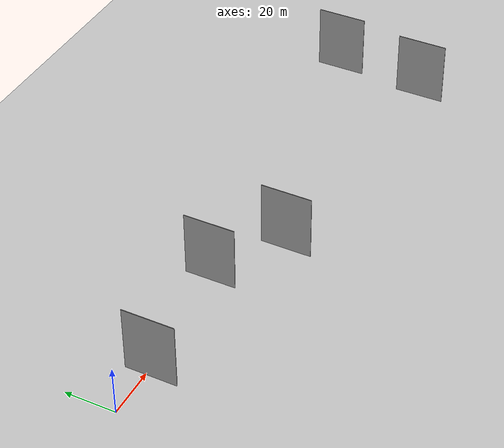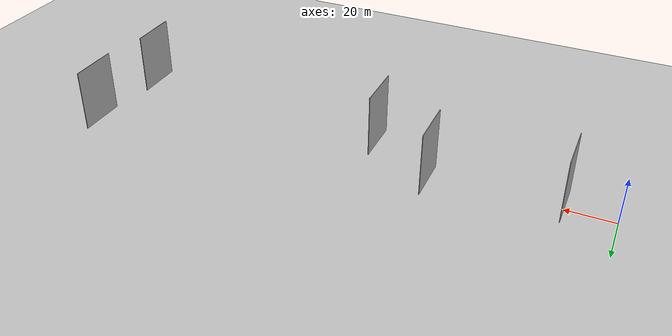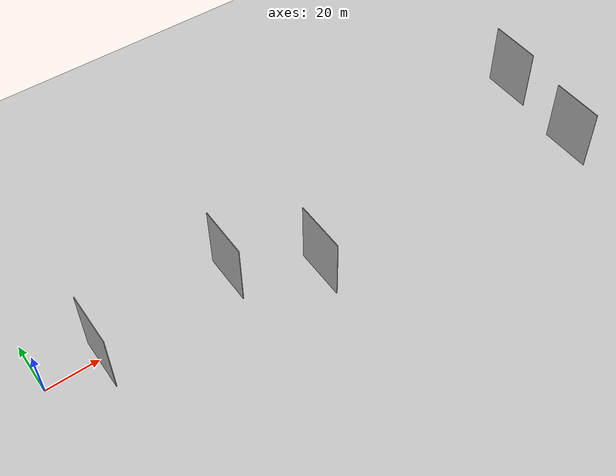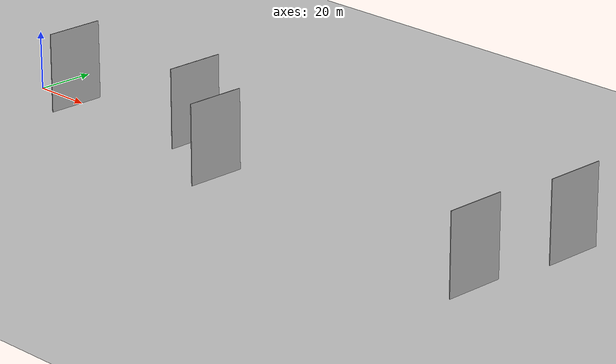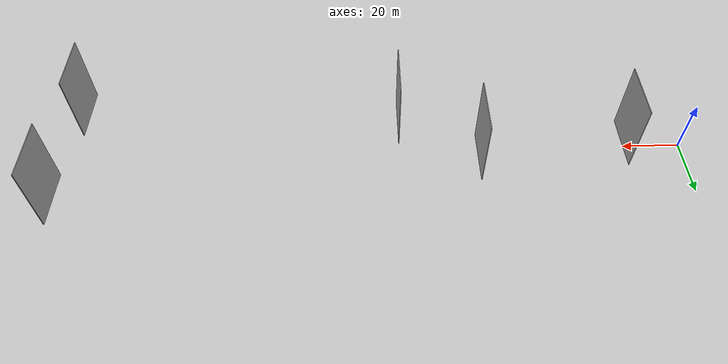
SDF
<sdf version="1.7">
 <world name="default">
  <physics type="ode">
   <ode>
    <solver>
     <type>quick</type>
     <iters>100</iters>
     <sor>1</sor>
     <use_dynamic_moi_rescaling>0</use_dynamic_moi_rescaling>
    </solver>
    <constraints>
     <cfm>0</cfm>
     <erp>0.9</erp>
     <contact_max_correcting_vel>0.1</contact_max_correcting_vel>
     <contact_surface_layer>0</contact_surface_layer>
    </constraints>
   </ode>
   <real_time_update_rate>-1</real_time_update_rate>
   <max_step_size>0.001</max_step_size>
   <real_time_factor>1</real_time_factor>
  </physics>
  <model name="ground_plane">
   <static>1</static>
   <link name="link">
    <collision name="collision">
     <geometry><plane><normal>0 0 1</normal><size>5000 5000</size></plane></geometry>
     <surface><friction><ode><mu>1</mu><mu2>1</mu2></ode></friction></surface>
    </collision>
    <visual name="runway">
     <pose>0 0 0.005 0 -0 0</pose>
     <cast_shadows>0</cast_shadows>
     <geometry><plane><normal>0 0 1</normal><size>1829 45</size></plane></geometry>
     <material>
      <script><uri>file://media/materials/scripts/gazebo.material</uri><name>Gazebo/Runway</name></script>
     </material>
    </visual>
    <visual name="grass">
     <pose>0 0 -0.1 0 -0 0</pose>
     <cast_shadows>0</cast_shadows>
     <geometry><plane><normal>0 0 1</normal><size>5000 5000</size></plane></geometry>
     <material>
      <script><uri>file://media/materials/scripts/gazebo.material</uri><name>Gazebo/Grass</name></script>
     </material>
    </visual>
   </link>
  </model>
  <light name="sun" type="directional">
   <pose>0 0 10 0 -0 0</pose>
   <diffuse>0.8 0.8 0.8 1</diffuse>
   <specular>0.2 0.2 0.2 1</specular>
   <attenuation>
    <range>1000</range>
    <constant>0.9</constant>
    <linear>0.01</linear>
    <quadratic>0.001</quadratic>
   </attenuation>
   <direction>-0.5 0.1 -0.9</direction>
   <spot><inner_angle>0</inner_angle><outer_angle>0</outer_angle><falloff>0</falloff></spot>
  </light>
  <gravity>0 0 -9.8</gravity>
  <magnetic_field>6e-06 2.3e-05 -4.2e-05</magnetic_field>
  <atmosphere type="adiabatic"/>
  <scene><ambient>0.4 0.4 0.4 1</ambient><background>0.7 0.7 0.7 1</background><shadows>1</shadows></scene>
  <spherical_coordinates>
   <surface_model>EARTH_WGS84</surface_model>
   <latitude_deg>0</latitude_deg>
   <longitude_deg>0</longitude_deg>
   <elevation>0</elevation>
   <heading_deg>0</heading_deg>
  </spherical_coordinates>
  <model name="OBS_WALL">
   <link name="link_0">
    <inertial>
     <mass>9.42114</mass>
     <inertia><ixx>182.404</ixx><ixy>0</ixy><ixz>0</ixz><iyy>178.389</iyy><iyz>0</iyz><izz>4.1332</izz></inertia>
    </inertial>
    <pose>4e-06 0 -0 0 -0 0</pose>
    <visual name="visual">
     <geometry><box><size>0.274606 20.3591 26.6932</size></box></geometry>
     <material>
      <lighting>1</lighting>
      <script><uri>file://media/materials/scripts/gazebo.material</uri><name>Gazebo/Grey</name></script>
      <shader type="pixel"/>
     </material>
    </visual>
    <collision name="collision">
     <geometry><box><size>0.274606 20.3591 26.6932</size></box></geometry>
     <surface>
      <friction>
       <ode><mu>1</mu><mu2>1</mu2><fdir1>0 0 0</fdir1><slip1>0</slip1><slip2>0</slip2></ode>
       <torsional>
        <coefficient>1</coefficient>
        <patch_radius>0</patch_radius>
        <surface_radius>0</surface_radius>
        <use_patch_radius>1</use_patch_radius>
        <ode><slip>0</slip></ode>
       </torsional>
      </friction>
      <bounce><restitution_coefficient>0</restitution_coefficient><threshold>1e+06</threshold></bounce>
      <contact>
       <collide_without_contact>0</collide_without_contact>
       <collide_without_contact_bitmask>1</collide_without_contact_bitmask>
       <collide_bitmask>1</collide_bitmask>
       <ode>
        <soft_cfm>0</soft_cfm>
        <soft_erp>0.2</soft_erp>
        <kp>1e+13</kp>
        <kd>1</kd>
        <max_vel>0.01</max_vel>
        <min_depth>0</min_depth>
       </ode>
       <bullet>
        <split_impulse>1</split_impulse>
        <split_impulse_penetration_threshold>-0.01</split_impulse_penetration_threshold>
        <soft_cfm>0</soft_cfm>
        <soft_erp>0.2</soft_erp>
        <kp>1e+13</kp>
        <kd>1</kd>
       </bullet>
      </contact>
     </surface>
    </collision>
   </link>
   <static>0</static>
   <pose>19.7019 -2.02089 13.3467 0 -0.000756 -3.4e-05</pose>
  </model>
  <model name="OBS_WALL_clone">
   <link name="link_0">
    <inertial>
     <mass>9.42114</mass>
     <inertia><ixx>182.404</ixx><ixy>0</ixy><ixz>0</ixz><iyy>178.389</iyy><iyz>0</iyz><izz>4.1332</izz></inertia>
    </inertial>
    <pose>4e-06 0 -0 0 -0 0</pose>
    <visual name="visual">
     <geometry><box><size>0.274606 20.3591 26.6932</size></box></geometry>
     <material>
      <lighting>1</lighting>
      <script><uri>file://media/materials/scripts/gazebo.material</uri><name>Gazebo/Grey</name></script>
      <shader type="pixel"/>
     </material>
    </visual>
    <collision name="collision">
     <geometry><box><size>0.274606 20.3591 26.6932</size></box></geometry>
     <surface>
      <friction>
       <ode><mu>1</mu><mu2>1</mu2><fdir1>0 0 0</fdir1><slip1>0</slip1><slip2>0</slip2></ode>
       <torsional>
        <coefficient>1</coefficient>
        <patch_radius>0</patch_radius>
        <surface_radius>0</surface_radius>
        <use_patch_radius>1</use_patch_radius>
        <ode><slip>0</slip></ode>
       </torsional>
      </friction>
      <bounce><restitution_coefficient>0</restitution_coefficient><threshold>1e+06</threshold></bounce>
      <contact>
       <collide_without_contact>0</collide_without_contact>
       <collide_without_contact_bitmask>1</collide_without_contact_bitmask>
       <collide_bitmask>1</collide_bitmask>
       <ode>
        <soft_cfm>0</soft_cfm>
        <soft_erp>0.2</soft_erp>
        <kp>1e+13</kp>
        <kd>1</kd>
        <max_vel>0.01</max_vel>
        <min_depth>0</min_depth>
       </ode>
       <bullet>
        <split_impulse>1</split_impulse>
        <split_impulse_penetration_threshold>-0.01</split_impulse_penetration_threshold>
        <soft_cfm>0</soft_cfm>
        <soft_erp>0.2</soft_erp>
        <kp>1e+13</kp>
        <kd>1</kd>
       </bullet>
      </contact>
     </surface>
    </collision>
   </link>
   <static>0</static>
   <pose>71.7662 3.30585 13.3467 0 -0.000756 -3.4e-05</pose>
  </model>
  <model name="OBS_WALL_clone_0">
   <link name="link_0">
    <inertial>
     <mass>9.42114</mass>
     <inertia><ixx>182.404</ixx><ixy>0</ixy><ixz>0</ixz><iyy>178.389</iyy><iyz>0</iyz><izz>4.1332</izz></inertia>
    </inertial>
    <pose>4e-06 0 -0 0 -0 0</pose>
    <visual name="visual">
     <geometry><box><size>0.274606 20.3591 26.6932</size></box></geometry>
     <material>
      <lighting>1</lighting>
      <script><uri>file://media/materials/scripts/gazebo.material</uri><name>Gazebo/Grey</name></script>
      <shader type="pixel"/>
     </material>
    </visual>
    <collision name="collision">
     <geometry><box><size>0.274606 20.3591 26.6932</size></box></geometry>
     <surface>
      <friction>
       <ode><mu>1</mu><mu2>1</mu2><fdir1>0 0 0</fdir1><slip1>0</slip1><slip2>0</slip2></ode>
       <torsional>
        <coefficient>1</coefficient>
        <patch_radius>0</patch_radius>
        <surface_radius>0</surface_radius>
        <use_patch_radius>1</use_patch_radius>
        <ode><slip>0</slip></ode>
       </torsional>
      </friction>
      <bounce><restitution_coefficient>0</restitution_coefficient><threshold>1e+06</threshold></bounce>
      <contact>
       <collide_without_contact>0</collide_without_contact>
       <collide_without_contact_bitmask>1</collide_without_contact_bitmask>
       <collide_bitmask>1</collide_bitmask>
       <ode>
        <soft_cfm>0</soft_cfm>
        <soft_erp>0.2</soft_erp>
        <kp>1e+13</kp>
        <kd>1</kd>
        <max_vel>0.01</max_vel>
        <min_depth>0</min_depth>
       </ode>
       <bullet>
        <split_impulse>1</split_impulse>
        <split_impulse_penetration_threshold>-0.01</split_impulse_penetration_threshold>
        <soft_cfm>0</soft_cfm>
        <soft_erp>0.2</soft_erp>
        <kp>1e+13</kp>
        <kd>1</kd>
       </bullet>
      </contact>
     </surface>
    </collision>
   </link>
   <static>0</static>
   <pose>99.5192 -13.6039 13.3467 0 -0.000756 -3.4e-05</pose>
  </model>
  <model name="OBS_WALL_clone_1">
   <link name="link_0">
    <inertial>
     <mass>9.42114</mass>
     <inertia><ixx>182.404</ixx><ixy>0</ixy><ixz>0</ixz><iyy>178.389</iyy><iyz>0</iyz><izz>4.1332</izz></inertia>
    </inertial>
    <pose>4e-06 0 -0 0 -0 0</pose>
    <visual name="visual">
     <geometry><box><size>0.274606 20.3591 26.6932</size></box></geometry>
     <material>
      <lighting>1</lighting>
      <script><uri>file://media/materials/scripts/gazebo.material</uri><name>Gazebo/Grey</name></script>
      <shader type="pixel"/>
     </material>
    </visual>
    <collision name="collision">
     <geometry><box><size>0.274606 20.3591 26.6932</size></box></geometry>
     <surface>
      <friction>
       <ode><mu>1</mu><mu2>1</mu2><fdir1>0 0 0</fdir1><slip1>0</slip1><slip2>0</slip2></ode>
       <torsional>
        <coefficient>1</coefficient>
        <patch_radius>0</patch_radius>
        <surface_radius>0</surface_radius>
        <use_patch_radius>1</use_patch_radius>
        <ode><slip>0</slip></ode>
       </torsional>
      </friction>
      <bounce><restitution_coefficient>0</restitution_coefficient><threshold>1e+06</threshold></bounce>
      <contact>
       <collide_without_contact>0</collide_without_contact>
       <collide_without_contact_bitmask>1</collide_without_contact_bitmask>
       <collide_bitmask>1</collide_bitmask>
       <ode>
        <soft_cfm>0</soft_cfm>
        <soft_erp>0.2</soft_erp>
        <kp>1e+13</kp>
        <kd>1</kd>
        <max_vel>0.01</max_vel>
        <min_depth>0</min_depth>
       </ode>
       <bullet>
        <split_impulse>1</split_impulse>
        <split_impulse_penetration_threshold>-0.01</split_impulse_penetration_threshold>
        <soft_cfm>0</soft_cfm>
        <soft_erp>0.2</soft_erp>
        <kp>1e+13</kp>
        <kd>1</kd>
       </bullet>
      </contact>
     </surface>
    </collision>
   </link>
   <static>0</static>
   <pose>216.864 17.9936 13.3467 0 -0.000756 -3.4e-05</pose>
  </model>
  <model name="OBS_WALL_clone_2">
   <link name="link_0">
    <inertial>
     <mass>9.42114</mass>
     <inertia><ixx>182.404</ixx><ixy>0</ixy><ixz>0</ixz><iyy>178.389</iyy><iyz>0</iyz><izz>4.1332</izz></inertia>
    </inertial>
    <pose>4e-06 0 -0 0 -0 0</pose>
    <visual name="visual">
     <geometry><box><size>0.274606 20.3591 26.6932</size></box></geometry>
     <material>
      <lighting>1</lighting>
      <script><uri>file://media/materials/scripts/gazebo.material</uri><name>Gazebo/Grey</name></script>
      <shader type="pixel"/>
     </material>
    </visual>
    <collision name="collision">
     <geometry><box><size>0.274606 20.3591 26.6932</size></box></geometry>
     <surface>
      <friction>
       <ode><mu>1</mu><mu2>1</mu2><fdir1>0 0 0</fdir1><slip1>0</slip1><slip2>0</slip2></ode>
       <torsional>
        <coefficient>1</coefficient>
        <patch_radius>0</patch_radius>
        <surface_radius>0</surface_radius>
        <use_patch_radius>1</use_patch_radius>
        <ode><slip>0</slip></ode>
       </torsional>
      </friction>
      <bounce><restitution_coefficient>0</restitution_coefficient><threshold>1e+06</threshold></bounce>
      <contact>
       <collide_without_contact>0</collide_without_contact>
       <collide_without_contact_bitmask>1</collide_without_contact_bitmask>
       <collide_bitmask>1</collide_bitmask>
       <ode>
        <soft_cfm>0</soft_cfm>
        <soft_erp>0.2</soft_erp>
        <kp>1e+13</kp>
        <kd>1</kd>
        <max_vel>0.01</max_vel>
        <min_depth>0</min_depth>
       </ode>
       <bullet>
        <split_impulse>1</split_impulse>
        <split_impulse_penetration_threshold>-0.01</split_impulse_penetration_threshold>
        <soft_cfm>0</soft_cfm>
        <soft_erp>0.2</soft_erp>
        <kp>1e+13</kp>
        <kd>1</kd>
       </bullet>
      </contact>
     </surface>
    </collision>
   </link>
   <static>0</static>
   <pose>213.082 -19.9865 13.3467 0 -0.000756 -3.4e-05</pose>
  </model>
 </world>
</sdf>
